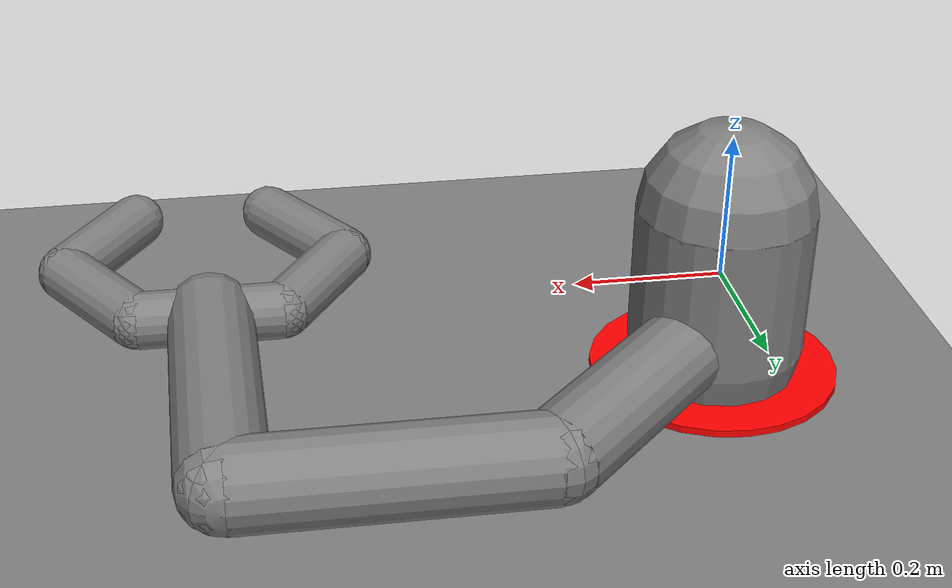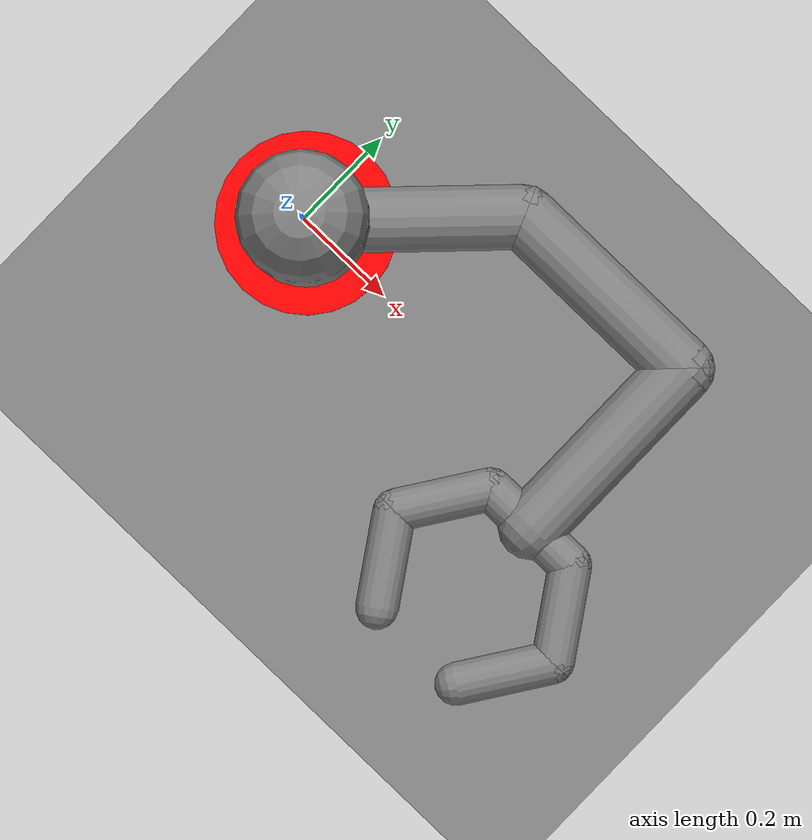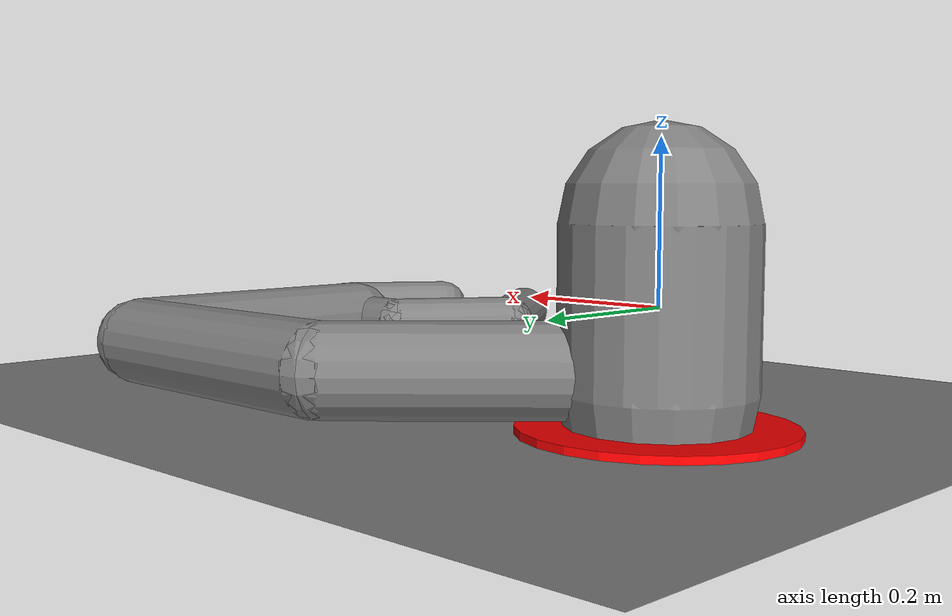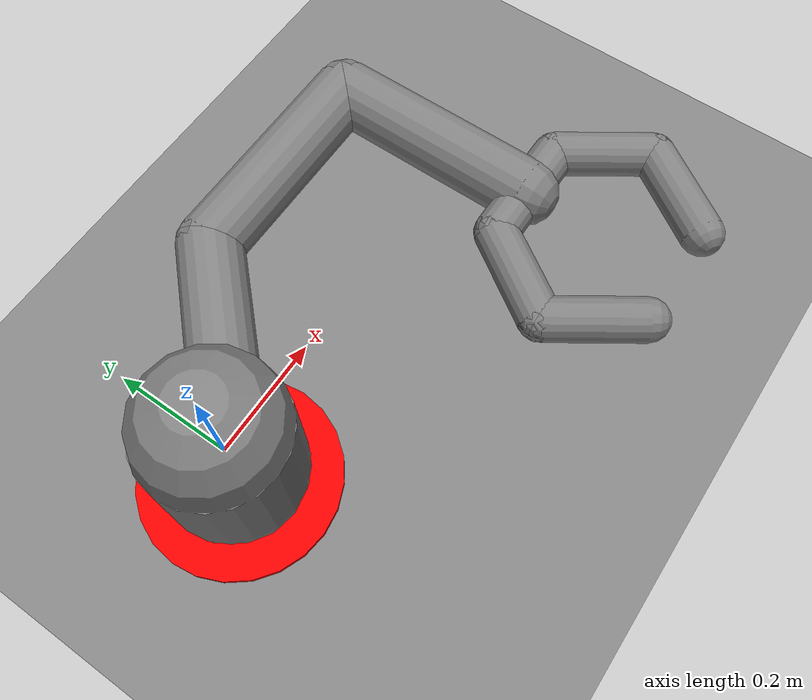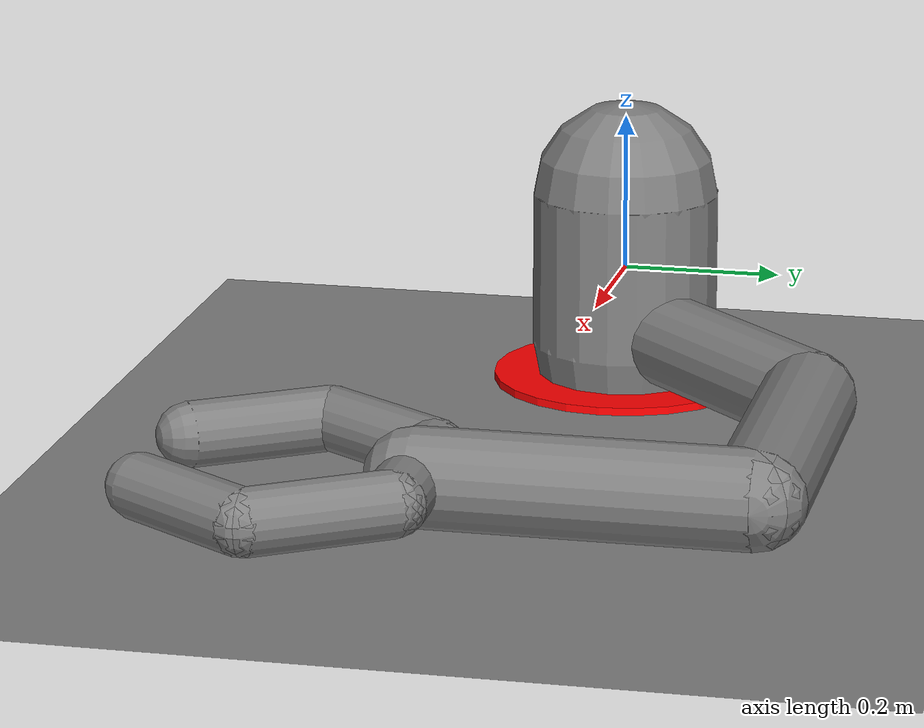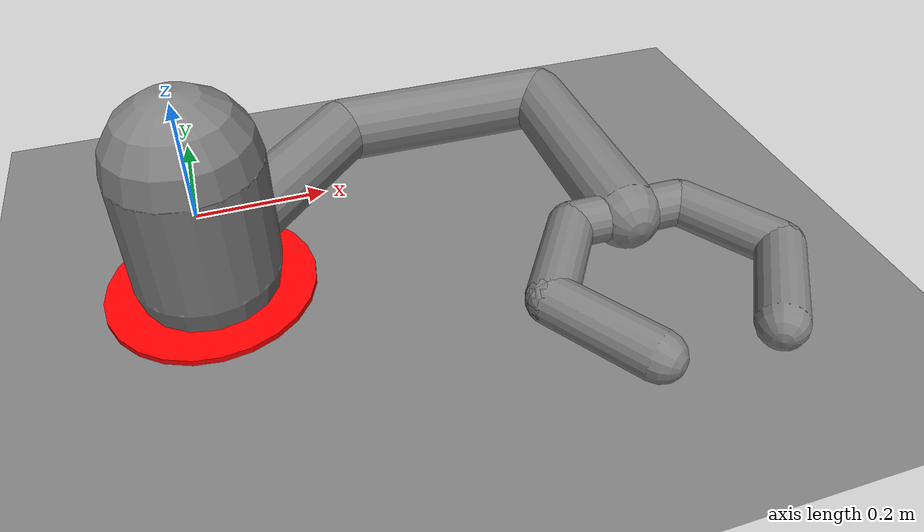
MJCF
<mujoco model="arm3d">
    <compiler inertiafromgeom="true" angle="radian" coordinate="local" />
    <option timestep="0.01" gravity="0 0 0" iterations="20" integrator="Euler" />

    <default>
        <joint armature='0.04' damping="1" limited="true"/>
        <geom friction=".8 .1 .1" density="300" margin="0.002" condim="1" contype="1" conaffinity="1"/>
    </default>

    <worldbody>
        <light diffuse=".5 .5 .5" pos="0 0 3" dir="0 0 -1"/>
        <geom type="plane" pos="0 0.5 -0.15" size="2 2 0.1" contype="1" conaffinity="1"/>

        <body name="palm" pos="0 0 0">
            <geom type="capsule" fromto="0 0 -0.1 0 0 0.1" size="0.12"/>
            <body name="proximal_1" pos="0 0 -0.075" axisangle="0 0 1 0.785">
                <joint name="proximal_j_1" type="hinge" pos="0 0 0" axis="0 0 1" range="-2.5236 2.3963" damping="1.0" />
                <geom type="capsule"  fromto="0 0 0 0.4 0 0" size="0.06" contype="1" conaffinity="1"/>
                <body name="distal_1" pos="0.4 0 0" axisangle="0 0 1 -0.785">
                    <joint name="distal_j_1" type="hinge" pos="0 0 0" axis="0 0 1" range="-2.3213 2.3" damping="1.0"/>
                    <geom type="capsule"  fromto="0 0 0 0.4 0 0" size="0.06" contype="1" conaffinity="1"/>
                    <body name="distal_2" pos="0.4 0 0" axisangle="0 0 1 -1.57">
                        <joint name="distal_j_2" type="hinge" pos="0 0 0" axis="0 0 1" range="-2.3213 2.3" damping="1.0"/>
                        <geom type="capsule" fromto="0 0 0 0.4 0 0" size="0.06" contype="1" conaffinity="1"/>
                        <body name="distal_4" pos="0.4 0 0">
                            <geom type="capsule" fromto="0 -0.1 0 0 0.1 0" size="0.04" contype="1" conaffinity="1" />
                            <geom type="capsule" fromto="0 -0.1 0 0.15 -0.2 0" size="0.04" contype="1" conaffinity="1" />
                            <geom type="capsule" fromto="0 0.1 0 0.15 0.2 0" size="0.04" contype="1" conaffinity="1" />
                            <body name="distal_5" pos="0.15 -0.2 0">
                                <joint name="distal_j_5" type="hinge" pos="0 0 0" axis="0 0 1" range="-1 1" damping="0.5"/>
                                <geom type="capsule" fromto="0 0 0 0.15 0.1 0" size="0.04" contype="1" conaffinity="1" />
                            </body>
                            <body name="distal_6" pos="0.15 0.2 0">
                                <joint name="distal_j_6" type="hinge" pos="0 0 0" axis="0 0 1" range="-1 1" damping="0.5"/>
                                <geom type="capsule" fromto="0 0 0 0.15 -0.1 0" size="0.04" contype="1" conaffinity="1" />
                            </body>
                        </body>
                    </body>
                </body>
            </body>
        </body>

        <body name="object" pos="0.0 0.0 -0.05">
            <geom rgba="1. 1. 1. 1" type="cylinder" size="0.1 0.1 0.1" density='0.00001' contype="1" conaffinity="1"/>
            <joint name="obj_slidey" type="slide" pos="0.025 0.025 0.025" axis="0 1 0" range="-10.3213 10.3" damping="0.5"/>
            <joint name="obj_slidex" type="slide" pos="0.025 0.025 0.025" axis="1 0 0" range="-10.3213 10.3" damping="0.5"/>
        </body>

        <body name="goal" pos="0.0 0.0 -0.145">
            <geom rgba="1. 0. 0. 1" type="cylinder" size="0.17 0.005 0.2" density='0.00001' contype="0" conaffinity="0"/>
            <joint name="goal_slidey" type="slide" pos="0 0 0" axis="0 1 0" range="-10.3213 10.3" damping="0.5"/>
            <joint name="goal_slidex" type="slide" pos="0 0 0" axis="1 0 0" range="-10.3213 10.3" damping="0.5"/>
        </body>

    </worldbody>
    <tendon>
        <fixed name="gripper">
            <joint joint="distal_j_5" coef="1"/>
            <joint joint="distal_j_6" coef="-1"/>
        </fixed>
    </tendon>

    <actuator>
        <motor joint="proximal_j_1" ctrlrange="-2 2" ctrllimited="true"/>
        <motor joint="distal_j_1" ctrlrange="-2 2" ctrllimited="true"/>
        <motor joint="distal_j_2" ctrlrange="-2 2" ctrllimited="true"/>
        <motor tendon="gripper" name="gripper_actuator" ctrlrange="-2 2" ctrllimited="true"/>
    </actuator>
</mujoco>
